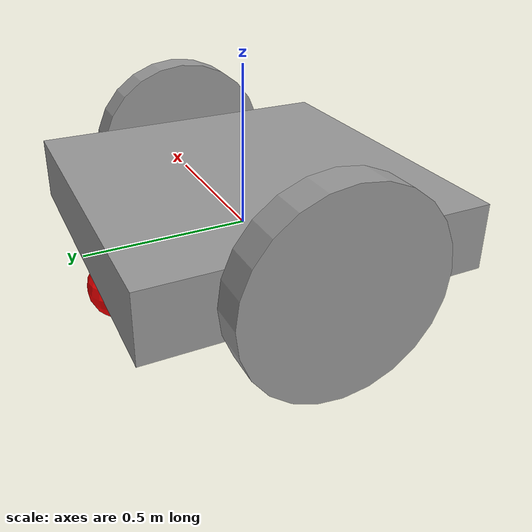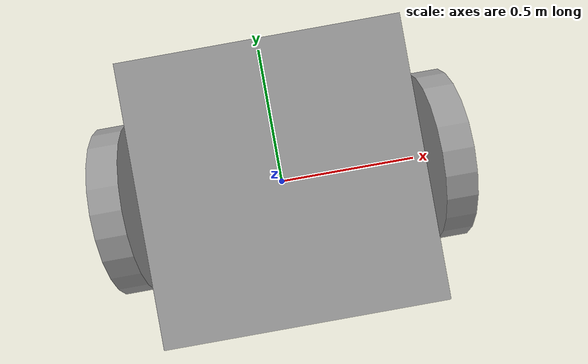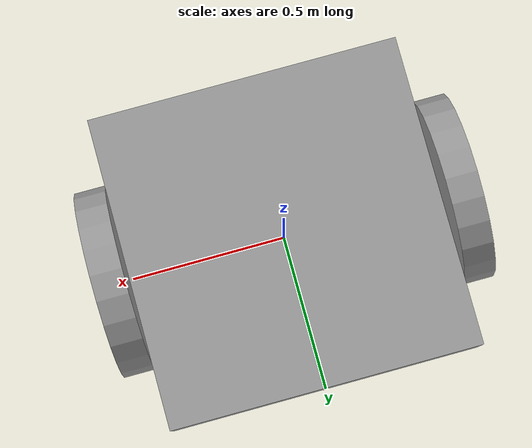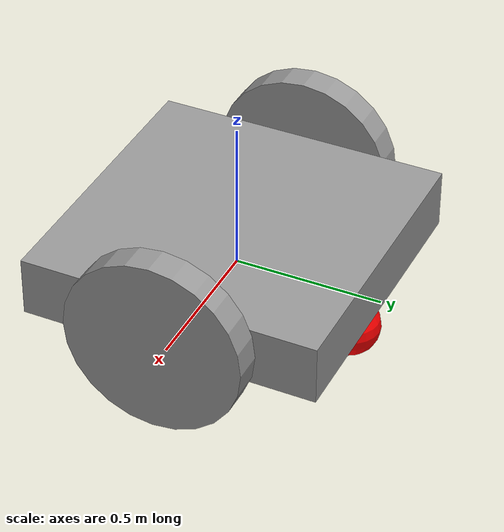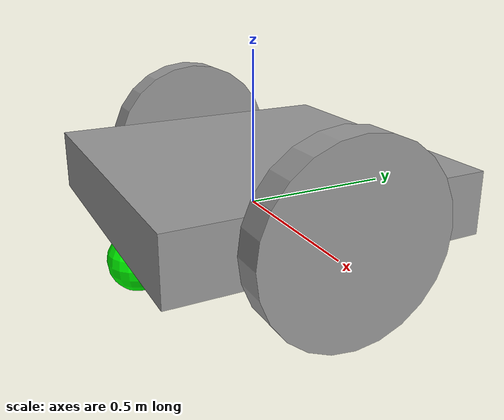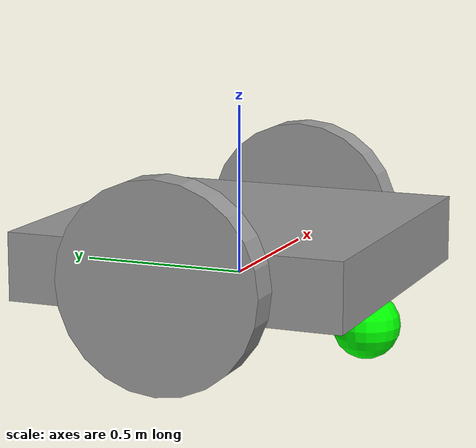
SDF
<?xml version='1.0'?>
<sdf version='1.7'>
  <model name='robot'>

    <link name='link_0'>
      <inertial>
        <mass>0.201543</mass>
        <inertia>
          <ixx>0.0174774</ixx>
          <ixy>0</ixy>
          <ixz>0</ixz>
          <iyy>0.0174774</iyy>
          <iyz>0</iyz>
          <izz>0.0335904</izz>
        </inertia>
        <pose>0 0 0 0 -0 0</pose>
      </inertial>
      <pose>-0 0 0.078 0 -0 0</pose>
      <gravity>1</gravity>
      <self_collide>0</self_collide>
      <kinematic>0</kinematic>
      <enable_wind>0</enable_wind>
      <visual name='visual'>
        <pose>0 0 0 0 -0 0</pose>
        <geometry>
          <box>
            <size>1 1 0.2</size>
          </box>
        </geometry>
        <material>
          <lighting>1</lighting>
          <script>
            <uri>file://media/materials/scripts/gazebo.material</uri>
            <name>Gazebo/Grey</name>
          </script>
          <shader type='pixel'>
            <normal_map>__default__</normal_map>
          </shader>
          <ambient>1 1 1 1</ambient>
          <diffuse>0.7 0.7 0.7 1</diffuse>
          <specular>0.01 0.01 0.01 1</specular>
          <emissive>0 0 0 1</emissive>
        </material>
        <transparency>0</transparency>
        <cast_shadows>1</cast_shadows>
      </visual>
      <collision name='collision'>
        <laser_retro>0</laser_retro>
        <max_contacts>10</max_contacts>
        <pose>0 0 0 0 -0 0</pose>
        <geometry>
          <box>
            <size>1 1 0.2</size>
          </box>
        </geometry>
        <surface>
          <friction>
            <ode>
              <mu>1</mu>
              <mu2>1</mu2>
              <fdir1>0 0 0</fdir1>
              <slip1>0</slip1>
              <slip2>0</slip2>
            </ode>
            <torsional>
              <coefficient>1</coefficient>
              <patch_radius>0</patch_radius>
              <surface_radius>0</surface_radius>
              <use_patch_radius>1</use_patch_radius>
              <ode>
                <slip>0</slip>
              </ode>
            </torsional>
          </friction>
          <bounce>
            <restitution_coefficient>0</restitution_coefficient>
            <threshold>1e+06</threshold>
          </bounce>
          <contact>
            <collide_without_contact>0</collide_without_contact>
            <collide_without_contact_bitmask>1</collide_without_contact_bitmask>
            <collide_bitmask>1</collide_bitmask>
            <ode>
              <soft_cfm>0</soft_cfm>
              <soft_erp>0.2</soft_erp>
              <kp>1e+13</kp>
              <kd>1</kd>
              <max_vel>0.01</max_vel>
              <min_depth>0</min_depth>
            </ode>
            <bullet>
              <split_impulse>1</split_impulse>
              <split_impulse_penetration_threshold>-0.01</split_impulse_penetration_threshold>
              <soft_cfm>0</soft_cfm>
              <soft_erp>0.2</soft_erp>
              <kp>1e+13</kp>
              <kd>1</kd>
            </bullet>
          </contact>
        </surface>
      </collision>
    </link>
    <link name='Left_Wheel'>
      <inertial>
        <mass>1</mass>
        <inertia>
          <ixx>0.145833</ixx>
          <ixy>0</ixy>
          <ixz>0</ixz>
          <iyy>0.145833</iyy>
          <iyz>0</iyz>
          <izz>0.125</izz>
        </inertia>
        <pose>0 0 0 0 -0 0</pose>
      </inertial>
      <pose>0.55 -0 0.078 0.00046 -1.5707 -0.001551</pose>
      <gravity>1</gravity>
      <self_collide>0</self_collide>
      <kinematic>0</kinematic>
      <enable_wind>0</enable_wind>
      <visual name='visual'>
        <pose>0 0 0 0 -0 0</pose>
        <geometry>
          <cylinder>
            <radius>0.3</radius>
            <length>0.1</length>
          </cylinder>
        </geometry>
        <material>
          <lighting>1</lighting>
          <script>
            <uri>file://media/materials/scripts/gazebo.material</uri>
            <name>Gazebo/Grey</name>
          </script>
          <shader type='pixel'>
            <normal_map>__default__</normal_map>
          </shader>
          <ambient>0 0 0 1</ambient>
          <diffuse>0.7 0.7 0.7 1</diffuse>
          <specular>0.01 0.01 0.01 1</specular>
          <emissive>0 0 0 1</emissive>
        </material>
        <transparency>0</transparency>
        <cast_shadows>1</cast_shadows>
      </visual>
      <collision name='collision'>
        <laser_retro>0</laser_retro>
        <max_contacts>10</max_contacts>
        <pose>0 0 0 0 -0 0</pose>
        <geometry>
          <cylinder>
            <radius>0.3</radius>
            <length>0.1</length>
          </cylinder>
        </geometry>
        <surface>
          <friction>
            <ode>
              <mu>1</mu>
              <mu2>1</mu2>
              <fdir1>0 0 0</fdir1>
              <slip1>0</slip1>
              <slip2>0</slip2>
            </ode>
            <torsional>
              <coefficient>1</coefficient>
              <patch_radius>0</patch_radius>
              <surface_radius>0</surface_radius>
              <use_patch_radius>1</use_patch_radius>
              <ode>
                <slip>0</slip>
              </ode>
            </torsional>
          </friction>
          <bounce>
            <restitution_coefficient>0</restitution_coefficient>
            <threshold>1e+06</threshold>
          </bounce>
          <contact>
            <collide_without_contact>0</collide_without_contact>
            <collide_without_contact_bitmask>1</collide_without_contact_bitmask>
            <collide_bitmask>1</collide_bitmask>
            <ode>
              <soft_cfm>0</soft_cfm>
              <soft_erp>0.2</soft_erp>
              <kp>1e+13</kp>
              <kd>1</kd>
              <max_vel>0.01</max_vel>
              <min_depth>0</min_depth>
            </ode>
            <bullet>
              <split_impulse>1</split_impulse>
              <split_impulse_penetration_threshold>-0.01</split_impulse_penetration_threshold>
              <soft_cfm>0</soft_cfm>
              <soft_erp>0.2</soft_erp>
              <kp>1e+13</kp>
              <kd>1</kd>
            </bullet>
          </contact>
        </surface>
      </collision>
    </link>
    <link name='Right_Wheel'>
      <inertial>
        <mass>1</mass>
        <inertia>
          <ixx>0.145833</ixx>
          <ixy>0</ixy>
          <ixz>0</ixz>
          <iyy>0.145833</iyy>
          <iyz>0</iyz>
          <izz>0.125</izz>
        </inertia>
        <pose>0 0 0 0 -0 0</pose>
      </inertial>
      <pose>-0.55 -0 0.078 -0.002598 1.5707 -0.001442</pose>
      <gravity>1</gravity>
      <self_collide>0</self_collide>
      <kinematic>0</kinematic>
      <enable_wind>0</enable_wind>
      <visual name='visual'>
        <pose>0 0 0 0 -0 0</pose>
        <geometry>
          <cylinder>
            <radius>0.3</radius>
            <length>0.1</length>
          </cylinder>
        </geometry>
        <material>
          <lighting>1</lighting>
          <script>
            <uri>file://media/materials/scripts/gazebo.material</uri>
            <name>Gazebo/Grey</name>
          </script>
          <shader type='pixel'>
            <normal_map>__default__</normal_map>
          </shader>
          <ambient>0 0 0 1</ambient>
          <diffuse>0.7 0.7 0.7 1</diffuse>
          <specular>0.01 0.01 0.01 1</specular>
          <emissive>0 0 0 1</emissive>
        </material>
        <transparency>0</transparency>
        <cast_shadows>1</cast_shadows>
      </visual>
      <collision name='collision'>
        <laser_retro>0</laser_retro>
        <max_contacts>10</max_contacts>
        <pose>0 0 0 0 -0 0</pose>
        <geometry>
          <cylinder>
            <radius>0.3</radius>
            <length>0.1</length>
          </cylinder>
        </geometry>
        <surface>
          <friction>
            <ode>
              <mu>1</mu>
              <mu2>1</mu2>
              <fdir1>0 0 0</fdir1>
              <slip1>0</slip1>
              <slip2>0</slip2>
            </ode>
            <torsional>
              <coefficient>1</coefficient>
              <patch_radius>0</patch_radius>
              <surface_radius>0</surface_radius>
              <use_patch_radius>1</use_patch_radius>
              <ode>
                <slip>0</slip>
              </ode>
            </torsional>
          </friction>
          <bounce>
            <restitution_coefficient>0</restitution_coefficient>
            <threshold>1e+06</threshold>
          </bounce>
          <contact>
            <collide_without_contact>0</collide_without_contact>
            <collide_without_contact_bitmask>1</collide_without_contact_bitmask>
            <collide_bitmask>1</collide_bitmask>
            <ode>
              <soft_cfm>0</soft_cfm>
              <soft_erp>0.2</soft_erp>
              <kp>1e+13</kp>
              <kd>1</kd>
              <max_vel>0.01</max_vel>
              <min_depth>0</min_depth>
            </ode>
            <bullet>
              <split_impulse>1</split_impulse>
              <split_impulse_penetration_threshold>-0.01</split_impulse_penetration_threshold>
              <soft_cfm>0</soft_cfm>
              <soft_erp>0.2</soft_erp>
              <kp>1e+13</kp>
              <kd>1</kd>
            </bullet>
          </contact>
        </surface>
      </collision>
    </link>
    <link name='Front_Caster'>
      <inertial>
        <mass>1</mass>
        <inertia>
          <ixx>0.1</ixx>
          <ixy>0</ixy>
          <ixz>0</ixz>
          <iyy>0.1</iyy>
          <iyz>0</iyz>
          <izz>0.1</izz>
        </inertia>
        <pose>0 0 0 0 -0 0</pose>
      </inertial>
      <pose>-0 -0.4 -0.122 0 -0 0</pose>
      <gravity>1</gravity>
      <self_collide>0</self_collide>
      <kinematic>0</kinematic>
      <enable_wind>0</enable_wind>
      <visual name='visual'>
        <pose>0 0 0 0 -0 0</pose>
        <geometry>
          <sphere>
            <radius>0.1</radius>
          </sphere>
        </geometry>
        <material>
          <lighting>1</lighting>
          <script>
            <uri>file://media/materials/scripts/gazebo.material</uri>
            <name>Gazebo/Grey</name>
          </script>
          <shader type='pixel'>
            <normal_map>__default__</normal_map>
          </shader>
          <ambient>0 1 0 1</ambient>
          <diffuse>0.7 0.7 0.7 1</diffuse>
          <specular>0.01 0.01 0.01 1</specular>
          <emissive>0 0 0 1</emissive>
        </material>
        <transparency>0</transparency>
        <cast_shadows>1</cast_shadows>
      </visual>
      <collision name='collision'>
        <laser_retro>0</laser_retro>
        <max_contacts>10</max_contacts>
        <pose>0 0 0 0 -0 0</pose>
        <geometry>
          <sphere>
            <radius>0.1</radius>
          </sphere>
        </geometry>
        <surface>
          <friction>
            <ode>
              <mu>1</mu>
              <mu2>1</mu2>
              <fdir1>0 0 0</fdir1>
              <slip1>0</slip1>
              <slip2>0</slip2>
            </ode>
            <torsional>
              <coefficient>1</coefficient>
              <patch_radius>0</patch_radius>
              <surface_radius>0</surface_radius>
              <use_patch_radius>1</use_patch_radius>
              <ode>
                <slip>0</slip>
              </ode>
            </torsional>
          </friction>
          <bounce>
            <restitution_coefficient>0</restitution_coefficient>
            <threshold>1e+06</threshold>
          </bounce>
          <contact>
            <collide_without_contact>0</collide_without_contact>
            <collide_without_contact_bitmask>1</collide_without_contact_bitmask>
            <collide_bitmask>1</collide_bitmask>
            <ode>
              <soft_cfm>0</soft_cfm>
              <soft_erp>0.2</soft_erp>
              <kp>1e+13</kp>
              <kd>1</kd>
              <max_vel>0.01</max_vel>
              <min_depth>0</min_depth>
            </ode>
            <bullet>
              <split_impulse>1</split_impulse>
              <split_impulse_penetration_threshold>-0.01</split_impulse_penetration_threshold>
              <soft_cfm>0</soft_cfm>
              <soft_erp>0.2</soft_erp>
              <kp>1e+13</kp>
              <kd>1</kd>
            </bullet>
          </contact>
        </surface>
      </collision>
    </link>
    <link name='Back_Caster'>
      <inertial>
        <mass>1</mass>
        <inertia>
          <ixx>0.1</ixx>
          <ixy>0</ixy>
          <ixz>0</ixz>
          <iyy>0.1</iyy>
          <iyz>0</iyz>
          <izz>0.1</izz>
        </inertia>
        <pose>0 0 0 0 -0 0</pose>
      </inertial>
      <pose>0 0.4 -0.122 0 -0 0</pose>
      <gravity>1</gravity>
      <self_collide>0</self_collide>
      <kinematic>0</kinematic>
      <enable_wind>0</enable_wind>
      <visual name='visual'>
        <pose>0 0 0 0 -0 0</pose>
        <geometry>
          <sphere>
            <radius>0.1</radius>
          </sphere>
        </geometry>
        <material>
          <lighting>1</lighting>
          <script>
            <uri>file://media/materials/scripts/gazebo.material</uri>
            <name>Gazebo/Grey</name>
          </script>
          <shader type='pixel'>
            <normal_map>__default__</normal_map>
          </shader>
          <ambient>1 0 0 1</ambient>
          <diffuse>0.7 0.7 0.7 1</diffuse>
          <specular>0.01 0.01 0.01 1</specular>
          <emissive>0 0 0 1</emissive>
        </material>
        <transparency>0</transparency>
        <cast_shadows>1</cast_shadows>
      </visual>
      <collision name='collision'>
        <laser_retro>0</laser_retro>
        <max_contacts>10</max_contacts>
        <pose>0 0 0 0 -0 0</pose>
        <geometry>
          <sphere>
            <radius>0.1</radius>
          </sphere>
        </geometry>
        <surface>
          <friction>
            <ode>
              <mu>1</mu>
              <mu2>1</mu2>
              <fdir1>0 0 0</fdir1>
              <slip1>0</slip1>
              <slip2>0</slip2>
            </ode>
            <torsional>
              <coefficient>1</coefficient>
              <patch_radius>0</patch_radius>
              <surface_radius>0</surface_radius>
              <use_patch_radius>1</use_patch_radius>
              <ode>
                <slip>0</slip>
              </ode>
            </torsional>
          </friction>
          <bounce>
            <restitution_coefficient>0</restitution_coefficient>
            <threshold>1e+06</threshold>
          </bounce>
          <contact>
            <collide_without_contact>0</collide_without_contact>
            <collide_without_contact_bitmask>1</collide_without_contact_bitmask>
            <collide_bitmask>1</collide_bitmask>
            <ode>
              <soft_cfm>0</soft_cfm>
              <soft_erp>0.2</soft_erp>
              <kp>1e+13</kp>
              <kd>1</kd>
              <max_vel>0.01</max_vel>
              <min_depth>0</min_depth>
            </ode>
            <bullet>
              <split_impulse>1</split_impulse>
              <split_impulse_penetration_threshold>-0.01</split_impulse_penetration_threshold>
              <soft_cfm>0</soft_cfm>
              <soft_erp>0.2</soft_erp>
              <kp>1e+13</kp>
              <kd>1</kd>
            </bullet>
          </contact>
        </surface>
      </collision>
    </link>
    <joint name='joint_left_wheel' type='revolute'>
      <parent>link_0</parent>
      <child>Left_Wheel</child>
      <pose>0 0 0 0 -0 0</pose>
      <axis>
        <xyz>0 0 -1</xyz>
        <limit>
          <lower>-1.79769e+308</lower>
          <upper>1.79769e+308</upper>
          <effort>-1</effort>
          <velocity>-1</velocity>
        </limit>
        <dynamics>
          <spring_reference>0</spring_reference>
          <spring_stiffness>0</spring_stiffness>
          <damping>0</damping>
          <friction>0</friction>
        </dynamics>
      </axis>
      <physics>
        <ode>
          <limit>
            <cfm>0</cfm>
            <erp>0.2</erp>
          </limit>
          <suspension>
            <cfm>0</cfm>
            <erp>0.2</erp>
          </suspension>
        </ode>
      </physics>
    </joint>
    <joint name='joint_right_wheel' type='revolute'>
      <parent>link_0</parent>
      <child>Right_Wheel</child>
      <pose>0 0 0 0 -0 0</pose>
      <axis>
        <xyz>0 0 1</xyz>
        <limit>
          <lower>-1.79769e+308</lower>
          <upper>1.79769e+308</upper>
          <effort>-1</effort>
          <velocity>-1</velocity>
        </limit>
        <dynamics>
          <spring_reference>0</spring_reference>
          <spring_stiffness>0</spring_stiffness>
          <damping>0</damping>
          <friction>0</friction>
        </dynamics>
      </axis>
      <physics>
        <ode>
          <limit>
            <cfm>0</cfm>
            <erp>0.2</erp>
          </limit>
          <suspension>
            <cfm>0</cfm>
            <erp>0.2</erp>
          </suspension>
        </ode>
      </physics>
    </joint>
    <joint name='link_0_JOINT_3' type='ball'>
      <parent>link_0</parent>
      <child>Front_Caster</child>
      <pose>0 0 0 0 -0 0</pose>
      <physics>
        <ode>
          <limit>
            <cfm>0</cfm>
            <erp>0.2</erp>
          </limit>
          <suspension>
            <cfm>0</cfm>
            <erp>0.2</erp>
          </suspension>
        </ode>
      </physics>
    </joint>
    <joint name='link_0_JOINT_4' type='ball'>
      <parent>link_0</parent>
      <child>Back_Caster</child>
      <pose>0 0 0 0 -0 0</pose>
      <physics>
        <ode>
          <limit>
            <cfm>0</cfm>
            <erp>0.2</erp>
          </limit>
          <suspension>
            <cfm>0</cfm>
            <erp>0.2</erp>
          </suspension>
        </ode>
      </physics>
    </joint>
    <static>0</static>
    <allow_auto_disable>1</allow_auto_disable>
    <plugin name="differential_drive_controller" filename="libgazebo_ros_diff_drive.so">
        <alwaysOn>true</alwaysOn>
        <updateRate>40</updateRate>
        <leftJoint>joint_left_wheel</leftJoint>
        <rightJoint>joint_right_wheel</rightJoint>
        <wheel_separation>1.1</wheel_separation>
        <wheel_radius>0.3</wheel_radius>
        <torque>1</torque>
        <commandTopic>cmd_vel</commandTopic>
        <odometryTopic>odom</odometryTopic>
        <publishTf>1</publishTf>
    </plugin>
  </model>
</sdf>
